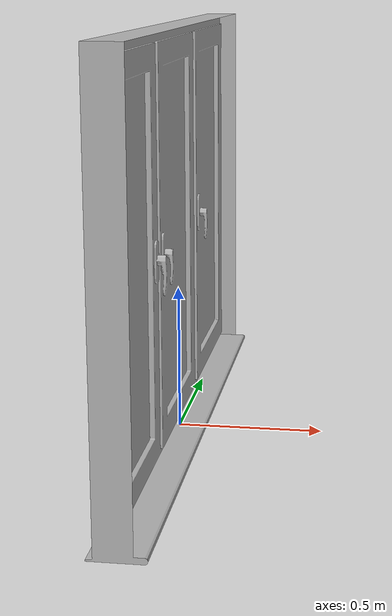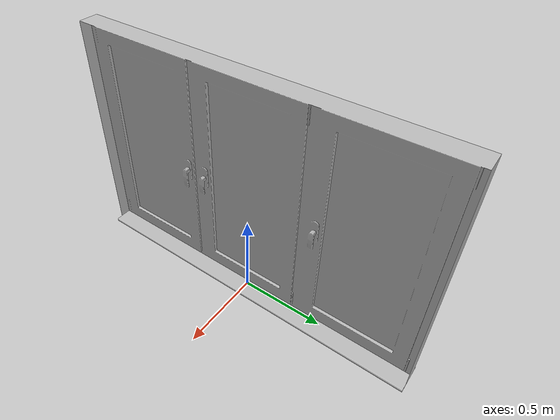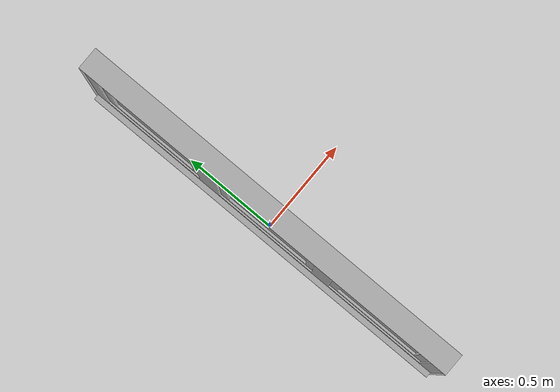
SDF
<?xml version='1.0'?>
<sdf version='1.4'>
  <model name='210'>
    <pose>0 0 0 0 0 0</pose>
    <static>true</static>
    <link name='link'>
      <collision name='collision'>
        <pose>0 0 0 0 0 0</pose>
        <geometry>
          <box>
            <size>0.175 2.1 2</size>
          </box>
        </geometry>
      </collision>
      <visual name='visual'>
        <pose>0 0 0 0 0 0</pose>
        <geometry>
          <mesh><uri>model://210/210.dae</uri></mesh>
        </geometry>
      </visual>
    </link>
  </model>
</sdf>
